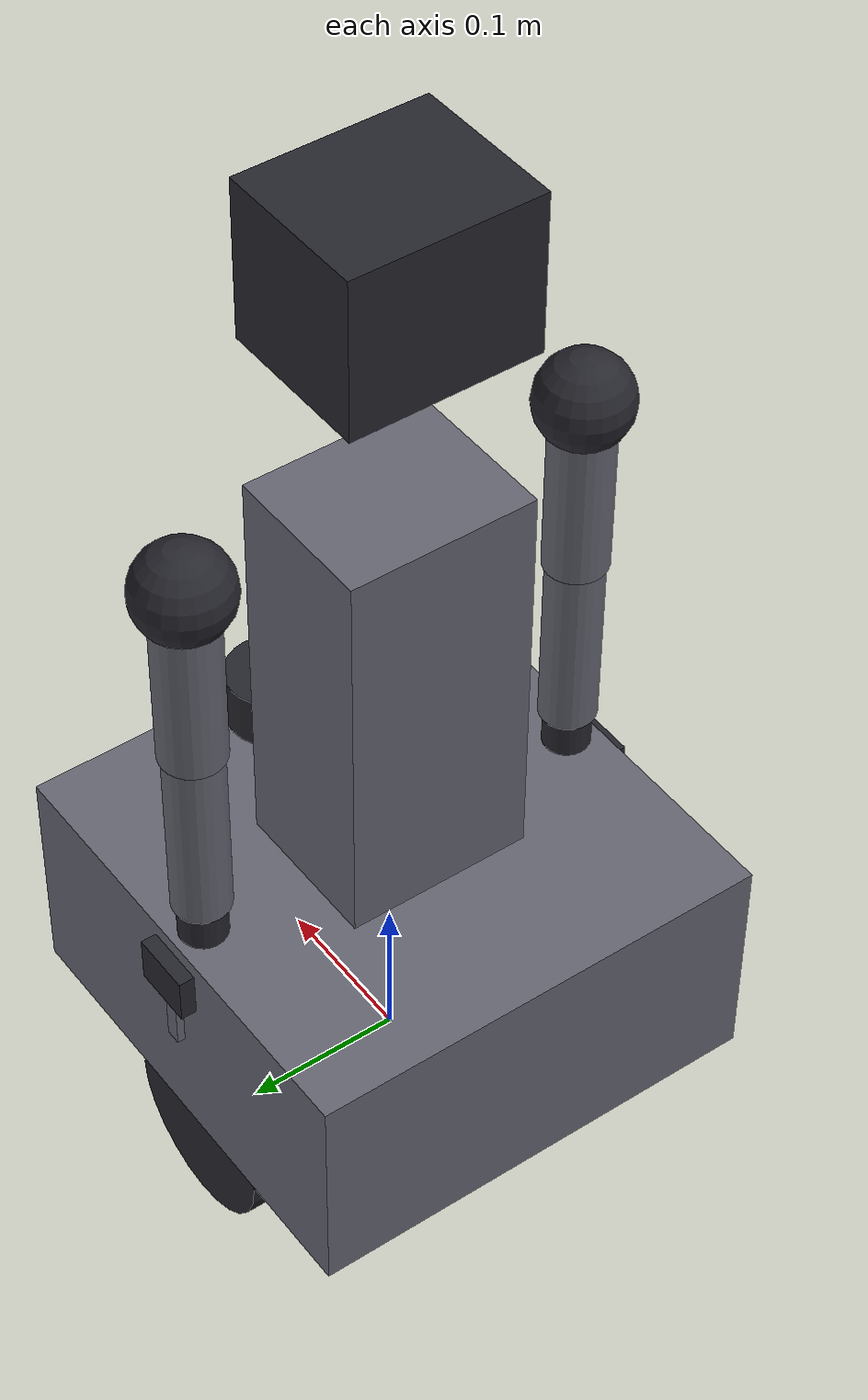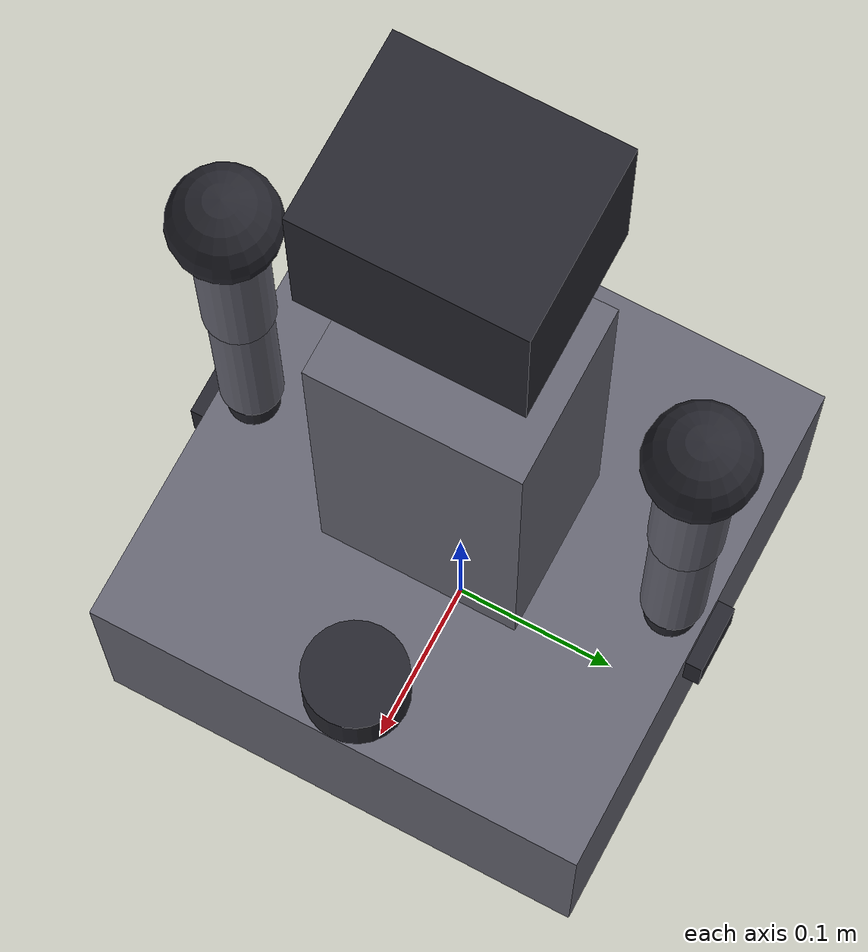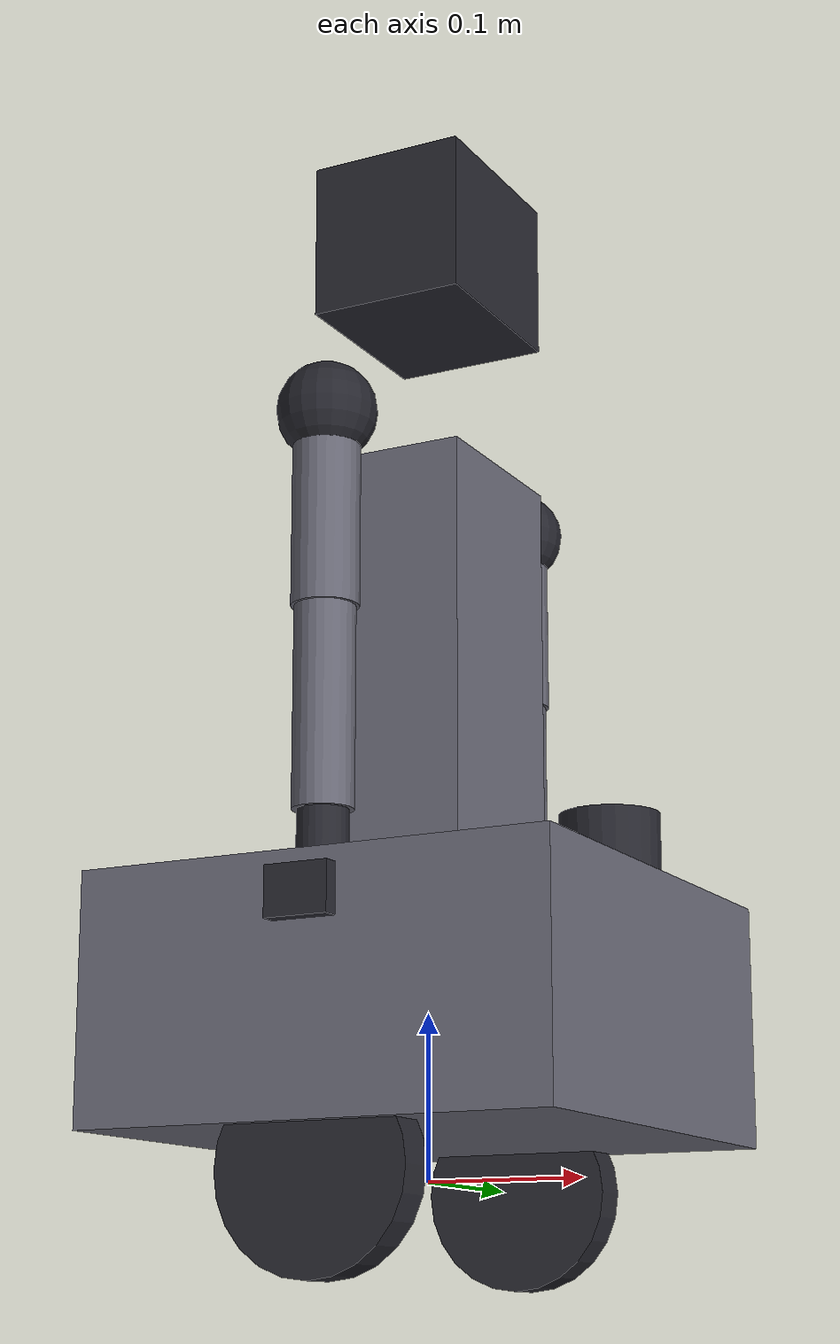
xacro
<?xml version="1.0"?>
<robot xmlns:xacro="http://www.ros.org/wiki/xacro" name="nori">

  <xacro:arg name="use_mock_hardware" default="false"/>
  <xacro:arg name="mjcf_path" default=""/>

  <material name="grey"><color rgba="0.4 0.4 0.45 1"/></material>
  <material name="dark"><color rgba="0.15 0.15 0.18 1"/></material>

  <!-- ============================ links & joints ========================= -->
  <link name="base_link">
    <visual><origin xyz="0 0 0.10"/><geometry><box size="0.30 0.30 0.15"/></geometry>
      <material name="grey"/></visual>
  </link>

  <xacro:macro name="wheel" params="side y">
    <link name="${side}_wheel_link">
      <visual><origin rpy="1.5708 0 0"/><geometry><cylinder radius="0.06" length="0.024"/></geometry>
        <material name="dark"/></visual>
    </link>
    <joint name="base_${side}_wheel" type="continuous">
      <parent link="base_link"/><child link="${side}_wheel_link"/>
      <origin xyz="0 ${y} 0"/><axis xyz="0 1 0"/>
    </joint>
  </xacro:macro>
  <xacro:wheel side="left"  y="0.13"/>
  <xacro:wheel side="right" y="-0.13"/>

  <!-- 2D lidar frame — matches the "lidar" site in simulation/mujoco/nori.xml.
       The nori_hardware plugin publishes /scan in this frame. -->
  <link name="lidar_link">
    <visual><geometry><cylinder radius="0.03" length="0.04"/></geometry>
      <material name="dark"/></visual>
  </link>
  <joint name="lidar_joint" type="fixed">
    <parent link="base_link"/><child link="lidar_link"/>
    <origin xyz="0.12 0 0.19"/>
  </joint>

  <!-- torso lift (prismatic) -->
  <link name="torso_link">
    <visual><origin xyz="0 0 0.175"/><geometry><box size="0.10 0.12 0.35"/></geometry>
      <material name="grey"/></visual>
  </link>
  <joint name="torso_lift" type="prismatic">
    <parent link="base_link"/><child link="torso_link"/>
    <origin xyz="0 0 0.09"/><axis xyz="0 0 1"/>
    <limit lower="0" upper="0.30" effort="400" velocity="0.2"/>
  </joint>

  <!-- head -->
  <link name="head_pan_link"/>
  <joint name="head_pan" type="revolute">
    <parent link="torso_link"/><child link="head_pan_link"/>
    <origin xyz="0 0 0.50"/><axis xyz="0 0 1"/>
    <limit lower="-1.5" upper="1.5" effort="15" velocity="3"/>
  </joint>
  <link name="head_tilt_link">
    <visual><geometry><box size="0.10 0.12 0.10"/></geometry><material name="dark"/></visual>
  </link>
  <joint name="head_tilt" type="revolute">
    <parent link="head_pan_link"/><child link="head_tilt_link"/>
    <origin xyz="0 0 0"/><axis xyz="0 1 0"/>
    <limit lower="-0.7" upper="0.7" effort="15" velocity="3"/>
  </joint>

  <!-- SO-101 arm macro (5-DOF + gripper) -->
  <xacro:macro name="arm" params="side y">
    <link name="${side}_shoulder_link"><visual><geometry><sphere radius="0.03"/></geometry>
      <material name="dark"/></visual></link>
    <joint name="${side}_shoulder_pan" type="revolute">
      <parent link="torso_link"/><child link="${side}_shoulder_link"/>
      <origin xyz="0 ${y} 0.35"/><axis xyz="0 0 1"/>
      <limit lower="-1.9" upper="1.9" effort="15" velocity="3"/>
    </joint>
    <link name="${side}_upper_arm_link"><visual><origin xyz="0 0 -0.06"/>
      <geometry><cylinder radius="0.02" length="0.12"/></geometry><material name="grey"/></visual></link>
    <joint name="${side}_shoulder_lift" type="revolute">
      <parent link="${side}_shoulder_link"/><child link="${side}_upper_arm_link"/>
      <origin xyz="0 0 0"/><axis xyz="0 1 0"/>
      <limit lower="-1.9" upper="1.9" effort="15" velocity="3"/>
    </joint>
    <link name="${side}_forearm_link"><visual><origin xyz="0 0 -0.06"/>
      <geometry><cylinder radius="0.018" length="0.12"/></geometry><material name="grey"/></visual></link>
    <joint name="${side}_elbow" type="revolute">
      <parent link="${side}_upper_arm_link"/><child link="${side}_forearm_link"/>
      <origin xyz="0 0 -0.12"/><axis xyz="0 1 0"/>
      <limit lower="0" upper="2.4" effort="15" velocity="3"/>
    </joint>
    <link name="${side}_wrist_link"><visual><origin xyz="0 0 -0.025"/>
      <geometry><cylinder radius="0.015" length="0.05"/></geometry><material name="dark"/></visual></link>
    <joint name="${side}_wrist_flex" type="revolute">
      <parent link="${side}_forearm_link"/><child link="${side}_wrist_link"/>
      <origin xyz="0 0 -0.12"/><axis xyz="0 1 0"/>
      <limit lower="-1.9" upper="1.9" effort="15" velocity="3"/>
    </joint>
    <link name="${side}_gripper_base_link"><visual><geometry><box size="0.04 0.06 0.03"/></geometry>
      <material name="dark"/></visual></link>
    <joint name="${side}_wrist_roll" type="revolute">
      <parent link="${side}_wrist_link"/><child link="${side}_gripper_base_link"/>
      <origin xyz="0 0 -0.05"/><axis xyz="0 0 1"/>
      <limit lower="-3.0" upper="3.0" effort="15" velocity="3"/>
    </joint>
    <link name="${side}_finger_link"><visual><geometry><box size="0.01 0.01 0.05"/></geometry>
      <material name="grey"/></visual></link>
    <joint name="${side}_gripper" type="prismatic">
      <parent link="${side}_gripper_base_link"/><child link="${side}_finger_link"/>
      <origin xyz="0 0.02 -0.03"/><axis xyz="0 -1 0"/>
      <limit lower="0" upper="0.05" effort="15" velocity="1"/>
    </joint>
  </xacro:macro>
  <xacro:arm side="left"  y="0.13"/>
  <xacro:arm side="right" y="-0.13"/>

  <!-- ============================ ros2_control =========================== -->
  <ros2_control name="nori_system" type="system">
    <hardware>
      <xacro:if value="$(arg use_mock_hardware)">
        <plugin>mock_components/GenericSystem</plugin>
      </xacro:if>
      <xacro:unless value="$(arg use_mock_hardware)">
        <plugin>nori_hardware/NoriMujocoSystem</plugin>
        <param name="mjcf_path">$(arg mjcf_path)</param>
      </xacro:unless>
    </hardware>

    <!-- velocity-controlled drive wheels -->
    <xacro:macro name="wheel_iface" params="name">
      <joint name="${name}">
        <command_interface name="velocity"/>
        <state_interface name="position"/><state_interface name="velocity"/>
      </joint>
    </xacro:macro>
    <xacro:wheel_iface name="base_left_wheel"/>
    <xacro:wheel_iface name="base_right_wheel"/>

    <!-- position-controlled joints (smart servos + lift) -->
    <xacro:macro name="pos_iface" params="name">
      <joint name="${name}">
        <command_interface name="position"/>
        <state_interface name="position"/><state_interface name="velocity"/>
      </joint>
    </xacro:macro>
    <xacro:pos_iface name="torso_lift"/>
    <xacro:pos_iface name="head_pan"/>
    <xacro:pos_iface name="head_tilt"/>
    <xacro:pos_iface name="left_shoulder_pan"/>
    <xacro:pos_iface name="left_shoulder_lift"/>
    <xacro:pos_iface name="left_elbow"/>
    <xacro:pos_iface name="left_wrist_flex"/>
    <xacro:pos_iface name="left_wrist_roll"/>
    <xacro:pos_iface name="left_gripper"/>
    <xacro:pos_iface name="right_shoulder_pan"/>
    <xacro:pos_iface name="right_shoulder_lift"/>
    <xacro:pos_iface name="right_elbow"/>
    <xacro:pos_iface name="right_wrist_flex"/>
    <xacro:pos_iface name="right_wrist_roll"/>
    <xacro:pos_iface name="right_gripper"/>
  </ros2_control>
</robot>
